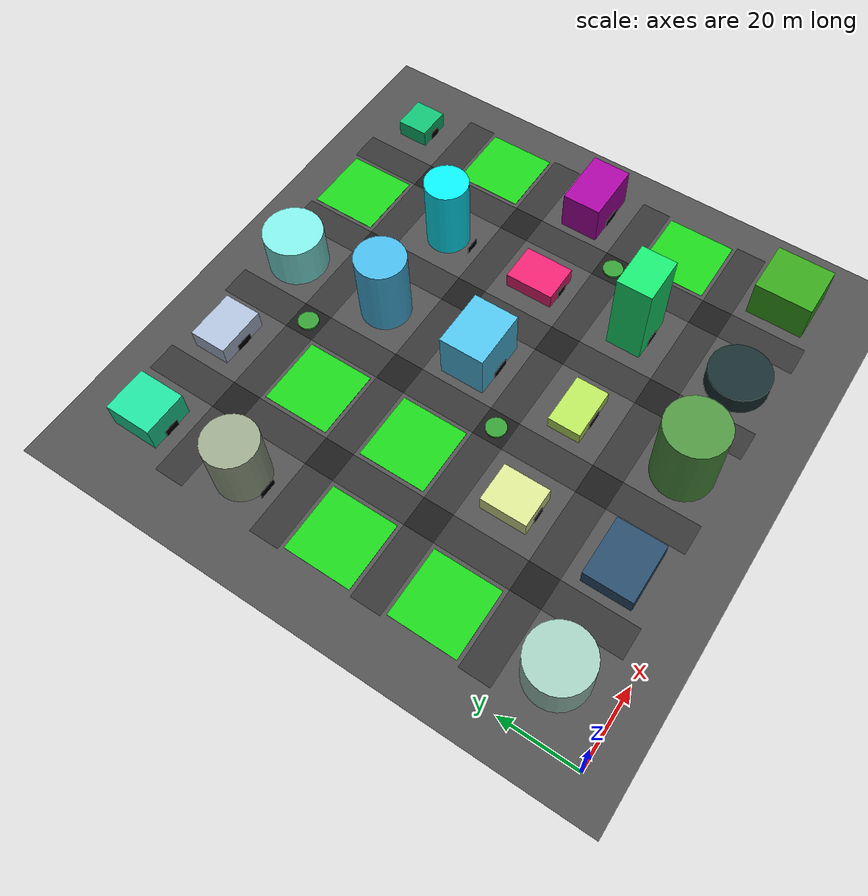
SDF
<sdf version="1.8">
 <world name="urban_city_rich">
  <model name="ground_plane">
   <static>true</static>
   <link name="link">
    <collision name="collision">
     <geometry><plane><normal>0 0 1</normal><size>200 200</size></plane></geometry>
     <surface><friction><ode><mu>100</mu><mu2>50</mu2></ode></friction></surface>
    </collision>
    <visual name="visual">
     <geometry><plane><normal>0 0 1</normal><size>200 200</size></plane></geometry>
     <material><ambient>0.3 0.3 0.3 1</ambient><diffuse>0.3 0.3 0.3 1</diffuse></material>
    </visual>
   </link>
  </model>
  <model name="bldg_28">
   <static>true</static>
   <pose>14.0 14.0 5.685499231946393 0 0 0</pose>
   <link name="link">
    <collision name="col">
     <geometry>
      <cylinder><radius>7.898367655879383</radius><length>11.370998463892786</length></cylinder>
     </geometry>
    </collision>
    <visual name="vis">
     <geometry>
      <cylinder><radius>7.898367655879383</radius><length>11.370998463892786</length></cylinder>
     </geometry>
     <material>
      <ambient>0.6154740010831454 0.7744404887108762 0.7245290238562685 1</ambient>
      <diffuse>0.6154740010831454 0.7744404887108762 0.7245290238562685 1</diffuse>
     </material>
    </visual>
   </link>
  </model>
  <model name="road_h_0_1">
   <static>true</static>
   <pose>14.0 28.0 0.01 0 0 0</pose>
   <link name="link">
    <visual name="vis">
     <geometry><box><size>20.0 8.0 0.02</size></box></geometry>
     <material><ambient>0.2 0.2 0.2 1</ambient><diffuse>0.2 0.2 0.2 1</diffuse></material>
    </visual>
   </link>
  </model>
  <model name="park_0_1">
   <static>true</static>
   <pose>14.0 42.0 0.05 0 0 0</pose>
   <link name="link">
    <visual name="vis">
     <geometry><box><size>18.0 18.0 0.1</size></box></geometry>
     <material><ambient>0.1 0.8 0.1 1</ambient><diffuse>0.1 0.8 0.1 1</diffuse></material>
    </visual>
   </link>
  </model>
  <model name="road_h_0_2">
   <static>true</static>
   <pose>14.0 56.0 0.01 0 0 0</pose>
   <link name="link">
    <visual name="vis">
     <geometry><box><size>20.0 8.0 0.02</size></box></geometry>
     <material><ambient>0.2 0.2 0.2 1</ambient><diffuse>0.2 0.2 0.2 1</diffuse></material>
    </visual>
   </link>
  </model>
  <model name="park_0_2">
   <static>true</static>
   <pose>14.0 70.0 0.05 0 0 0</pose>
   <link name="link">
    <visual name="vis">
     <geometry><box><size>18.0 18.0 0.1</size></box></geometry>
     <material><ambient>0.1 0.8 0.1 1</ambient><diffuse>0.1 0.8 0.1 1</diffuse></material>
    </visual>
   </link>
  </model>
  <model name="road_h_0_3">
   <static>true</static>
   <pose>14.0 84.0 0.01 0 0 0</pose>
   <link name="link">
    <visual name="vis">
     <geometry><box><size>20.0 8.0 0.02</size></box></geometry>
     <material><ambient>0.2 0.2 0.2 1</ambient><diffuse>0.2 0.2 0.2 1</diffuse></material>
    </visual>
   </link>
  </model>
  <model name="bldg_29">
   <static>true</static>
   <pose>14.0 98.0 8.233082452544537 0 0 0</pose>
   <link name="link">
    <collision name="col">
     <geometry><cylinder><radius>6.82322479609805</radius><length>16.466164905089073</length></cylinder></geometry>
    </collision>
    <visual name="vis">
     <geometry><cylinder><radius>6.82322479609805</radius><length>16.466164905089073</length></cylinder></geometry>
     <material>
      <ambient>0.583961199733589 0.6379405639750224 0.5292595040461351 1</ambient>
      <diffuse>0.583961199733589 0.6379405639750224 0.5292595040461351 1</diffuse>
     </material>
    </visual>
   </link>
  </model>
  <model name="door_29">
   <static>true</static>
   <pose>14.0 90.7665104247635 1.0 0 0 0</pose>
   <link name="link">
    <visual name="vis">
     <geometry><box><size>4.548816530732034 0.2 2.0</size></box></geometry>
     <material><ambient>0 0 0 1</ambient><diffuse>0 0 0 1</diffuse></material>
    </visual>
   </link>
  </model>
  <model name="road_h_0_4">
   <static>true</static>
   <pose>14.0 112.0 0.01 0 0 0</pose>
   <link name="link">
    <visual name="vis">
     <geometry><box><size>20.0 8.0 0.02</size></box></geometry>
     <material><ambient>0.2 0.2 0.2 1</ambient><diffuse>0.2 0.2 0.2 1</diffuse></material>
    </visual>
   </link>
  </model>
  <model name="bldg_30">
   <static>true</static>
   <pose>14.0 126.0 3.6754944838925607 0 0 0</pose>
   <link name="link">
    <collision name="col">
     <geometry><box><size>11.807731946299269 12.68857440061371 7.3509889677851215</size></box></geometry>
    </collision>
    <visual name="vis">
     <geometry><box><size>11.807731946299269 12.68857440061371 7.3509889677851215</size></box></geometry>
     <material>
      <ambient>0.11802714076669352 0.8456183309541014 0.6024776619844604 1</ambient>
      <diffuse>0.11802714076669352 0.8456183309541014 0.6024776619844604 1</diffuse>
     </material>
    </visual>
   </link>
  </model>
  <model name="door_30">
   <static>true</static>
   <pose>14.0 119.55571279969315 1.0 0 0 0</pose>
   <link name="link">
    <visual name="vis">
     <geometry><box><size>3.935910648766423 0.2 2.0</size></box></geometry>
     <material><ambient>0 0 0 1</ambient><diffuse>0 0 0 1</diffuse></material>
    </visual>
   </link>
  </model>
  <model name="road_v_1_0">
   <static>true</static>
   <pose>28.0 14.0 0.01 0 0 0</pose>
   <link name="link">
    <visual name="vis">
     <geometry><box><size>8.0 20.0 0.02</size></box></geometry>
     <material><ambient>0.2 0.2 0.2 1</ambient><diffuse>0.2 0.2 0.2 1</diffuse></material>
    </visual>
   </link>
  </model>
  <model name="bldg_35">
   <static>true</static>
   <pose>42.0 14.0 2.3201384446277333 0 0 0</pose>
   <link name="link">
    <collision name="col">
     <geometry><box><size>15.550002278564541 12.712332024917666 4.640276889255467</size></box></geometry>
    </collision>
    <visual name="vis">
     <geometry><box><size>15.550002278564541 12.712332024917666 4.640276889255467</size></box></geometry>
     <material>
      <ambient>0.14931626637363904 0.2856864660443016 0.40122810193149017 1</ambient>
      <diffuse>0.14931626637363904 0.2856864660443016 0.40122810193149017 1</diffuse>
     </material>
    </visual>
   </link>
  </model>
  <model name="road_inter_1_1">
   <static>true</static>
   <pose>28.0 28.0 0.01 0 0 0</pose>
   <link name="link">
    <visual name="vis">
     <geometry><box><size>8.0 8.0 0.02</size></box></geometry>
     <material><ambient>0.1 0.1 0.1 1</ambient><diffuse>0.1 0.1 0.1 1</diffuse></material>
    </visual>
   </link>
  </model>
  <model name="road_h_1_1">
   <static>true</static>
   <pose>42.0 28.0 0.01 0 0 0</pose>
   <link name="link">
    <visual name="vis">
     <geometry><box><size>20.0 8.0 0.02</size></box></geometry>
     <material><ambient>0.2 0.2 0.2 1</ambient><diffuse>0.2 0.2 0.2 1</diffuse></material>
    </visual>
   </link>
  </model>
  <model name="road_v_1_1">
   <static>true</static>
   <pose>28.0 42.0 0.01 0 0 0</pose>
   <link name="link">
    <visual name="vis">
     <geometry><box><size>8.0 20.0 0.02</size></box></geometry>
     <material><ambient>0.2 0.2 0.2 1</ambient><diffuse>0.2 0.2 0.2 1</diffuse></material>
    </visual>
   </link>
  </model>
  <model name="bldg_36">
   <static>true</static>
   <pose>42.0 42.0 2.310948062630259 0 0 0</pose>
   <link name="link">
    <collision name="col">
     <geometry><box><size>10.402809922148496 12.175820120242573 4.621896125260518</size></box></geometry>
    </collision>
    <visual name="vis">
     <geometry><box><size>10.402809922148496 12.175820120242573 4.621896125260518</size></box></geometry>
     <material>
      <ambient>0.8245447802084896 0.8660972322238838 0.5551744397448936 1</ambient>
      <diffuse>0.8245447802084896 0.8660972322238838 0.5551744397448936 1</diffuse>
     </material>
    </visual>
   </link>
  </model>
  <model name="door_36">
   <static>true</static>
   <pose>42.0 35.81208993987871 1.0 0 0 0</pose>
   <link name="link">
    <visual name="vis">
     <geometry><box><size>3.467603307382832 0.2 2.0</size></box></geometry>
     <material><ambient>0 0 0 1</ambient><diffuse>0 0 0 1</diffuse></material>
    </visual>
   </link>
  </model>
  <model name="road_inter_1_2">
   <static>true</static>
   <pose>28.0 56.0 0.01 0 0 0</pose>
   <link name="link">
    <visual name="vis">
     <geometry><box><size>8.0 8.0 0.02</size></box></geometry>
     <material><ambient>0.1 0.1 0.1 1</ambient><diffuse>0.1 0.1 0.1 1</diffuse></material>
    </visual>
   </link>
  </model>
  <model name="road_h_1_2">
   <static>true</static>
   <pose>42.0 56.0 0.01 0 0 0</pose>
   <link name="link">
    <visual name="vis">
     <geometry><box><size>20.0 8.0 0.02</size></box></geometry>
     <material><ambient>0.2 0.2 0.2 1</ambient><diffuse>0.2 0.2 0.2 1</diffuse></material>
    </visual>
   </link>
  </model>
  <model name="road_v_1_2">
   <static>true</static>
   <pose>28.0 70.0 0.01 0 0 0</pose>
   <link name="link">
    <visual name="vis">
     <geometry><box><size>8.0 20.0 0.02</size></box></geometry>
     <material><ambient>0.2 0.2 0.2 1</ambient><diffuse>0.2 0.2 0.2 1</diffuse></material>
    </visual>
   </link>
  </model>
  <model name="park_1_2">
   <static>true</static>
   <pose>42.0 70.0 0.05 0 0 0</pose>
   <link name="link">
    <visual name="vis">
     <geometry><box><size>18.0 18.0 0.1</size></box></geometry>
     <material><ambient>0.1 0.8 0.1 1</ambient><diffuse>0.1 0.8 0.1 1</diffuse></material>
    </visual>
   </link>
  </model>
  <model name="road_inter_1_3">
   <static>true</static>
   <pose>28.0 84.0 0.01 0 0 0</pose>
   <link name="link">
    <visual name="vis">
     <geometry><box><size>8.0 8.0 0.02</size></box></geometry>
     <material><ambient>0.1 0.1 0.1 1</ambient><diffuse>0.1 0.1 0.1 1</diffuse></material>
    </visual>
   </link>
  </model>
  <model name="road_h_1_3">
   <static>true</static>
   <pose>42.0 84.0 0.01 0 0 0</pose>
   <link name="link">
    <visual name="vis">
     <geometry><box><size>20.0 8.0 0.02</size></box></geometry>
     <material><ambient>0.2 0.2 0.2 1</ambient><diffuse>0.2 0.2 0.2 1</diffuse></material>
    </visual>
   </link>
  </model>
  <model name="road_v_1_3">
   <static>true</static>
   <pose>28.0 98.0 0.01 0 0 0</pose>
   <link name="link">
    <visual name="vis">
     <geometry><box><size>8.0 20.0 0.02</size></box></geometry>
     <material><ambient>0.2 0.2 0.2 1</ambient><diffuse>0.2 0.2 0.2 1</diffuse></material>
    </visual>
   </link>
  </model>
  <model name="park_1_3">
   <static>true</static>
   <pose>42.0 98.0 0.05 0 0 0</pose>
   <link name="link">
    <visual name="vis">
     <geometry><box><size>18.0 18.0 0.1</size></box></geometry>
     <material><ambient>0.1 0.8 0.1 1</ambient><diffuse>0.1 0.8 0.1 1</diffuse></material>
    </visual>
   </link>
  </model>
  <model name="road_inter_1_4">
   <static>true</static>
   <pose>28.0 112.0 0.01 0 0 0</pose>
   <link name="link">
    <visual name="vis">
     <geometry><box><size>8.0 8.0 0.02</size></box></geometry>
     <material><ambient>0.1 0.1 0.1 1</ambient><diffuse>0.1 0.1 0.1 1</diffuse></material>
    </visual>
   </link>
  </model>
  <model name="road_h_1_4">
   <static>true</static>
   <pose>42.0 112.0 0.01 0 0 0</pose>
   <link name="link">
    <visual name="vis">
     <geometry><box><size>20.0 8.0 0.02</size></box></geometry>
     <material><ambient>0.2 0.2 0.2 1</ambient><diffuse>0.2 0.2 0.2 1</diffuse></material>
    </visual>
   </link>
  </model>
  <model name="road_v_1_4">
   <static>true</static>
   <pose>28.0 126.0 0.01 0 0 0</pose>
   <link name="link">
    <visual name="vis">
     <geometry><box><size>8.0 20.0 0.02</size></box></geometry>
     <material><ambient>0.2 0.2 0.2 1</ambient><diffuse>0.2 0.2 0.2 1</diffuse></material>
    </visual>
   </link>
  </model>
  <model name="bldg_37">
   <static>true</static>
   <pose>42.0 126.0 2.664848281217337 0 0 0</pose>
   <link name="link">
    <collision name="col">
     <geometry><box><size>13.393127164004394 9.942511189589126 5.329696562434674</size></box></geometry>
    </collision>
    <visual name="vis">
     <geometry><box><size>13.393127164004394 9.942511189589126 5.329696562434674</size></box></geometry>
     <material>
      <ambient>0.663888598311164 0.721105243106654 0.8210436352093743 1</ambient>
      <diffuse>0.663888598311164 0.721105243106654 0.8210436352093743 1</diffuse>
     </material>
    </visual>
   </link>
  </model>
  <model name="door_37">
   <static>true</static>
   <pose>42.0 120.92874440520544 1.0 0 0 0</pose>
   <link name="link">
    <visual name="vis">
     <geometry><box><size>4.464375721334798 0.2 2.0</size></box></geometry>
     <material><ambient>0 0 0 1</ambient><diffuse>0 0 0 1</diffuse></material>
    </visual>
   </link>
  </model>
  <model name="road_v_2_0">
   <static>true</static>
   <pose>56.0 14.0 0.01 0 0 0</pose>
   <link name="link">
    <visual name="vis">
     <geometry><box><size>8.0 20.0 0.02</size></box></geometry>
     <material><ambient>0.2 0.2 0.2 1</ambient><diffuse>0.2 0.2 0.2 1</diffuse></material>
    </visual>
   </link>
  </model>
  <model name="bldg_41">
   <static>true</static>
   <pose>70.0 14.0 10.532635943801678 0 0 0</pose>
   <link name="link">
    <collision name="col">
     <geometry>
      <cylinder><radius>7.837646758557028</radius><length>21.065271887603355</length></cylinder>
     </geometry>
    </collision>
    <visual name="vis">
     <geometry>
      <cylinder><radius>7.837646758557028</radius><length>21.065271887603355</length></cylinder>
     </geometry>
     <material>
      <ambient>0.29941993303598424 0.562408701392852 0.2496993738528701 1</ambient>
      <diffuse>0.29941993303598424 0.562408701392852 0.2496993738528701 1</diffuse>
     </material>
    </visual>
   </link>
  </model>
  <model name="door_41">
   <static>true</static>
   <pose>70.0 8.818568813748506 1.0 0 0 0</pose>
   <link name="link">
    <visual name="vis">
     <geometry><box><size>5.2250978390380185 0.2 2.0</size></box></geometry>
     <material><ambient>0 0 0 1</ambient><diffuse>0 0 0 1</diffuse></material>
    </visual>
   </link>
  </model>
  <model name="road_inter_2_1">
   <static>true</static>
   <pose>56.0 28.0 0.01 0 0 0</pose>
   <link name="link">
    <visual name="vis">
     <geometry><box><size>8.0 8.0 0.02</size></box></geometry>
     <material><ambient>0.1 0.1 0.1 1</ambient><diffuse>0.1 0.1 0.1 1</diffuse></material>
    </visual>
   </link>
  </model>
  <model name="road_h_2_1">
   <static>true</static>
   <pose>70.0 28.0 0.01 0 0 0</pose>
   <link name="link">
    <visual name="vis">
     <geometry><box><size>20.0 8.0 0.02</size></box></geometry>
     <material><ambient>0.2 0.2 0.2 1</ambient><diffuse>0.2 0.2 0.2 1</diffuse></material>
    </visual>
   </link>
  </model>
  <model name="road_v_2_1">
   <static>true</static>
   <pose>56.0 42.0 0.01 0 0 0</pose>
   <link name="link">
    <visual name="vis">
     <geometry><box><size>8.0 20.0 0.02</size></box></geometry>
     <material><ambient>0.2 0.2 0.2 1</ambient><diffuse>0.2 0.2 0.2 1</diffuse></material>
    </visual>
   </link>
  </model>
  <model name="bldg_42">
   <static>true</static>
   <pose>70.0 42.0 1.770200113498316 0 0 0</pose>
   <link name="link">
    <collision name="col">
     <geometry><box><size>13.552681564584802 8.598847044795242 3.540400226996632</size></box></geometry>
    </collision>
    <visual name="vis">
     <geometry><box><size>13.552681564584802 8.598847044795242 3.540400226996632</size></box></geometry>
     <material>
      <ambient>0.6999712206346148 0.8655176366864179 0.34971847463449224 1</ambient>
      <diffuse>0.6999712206346148 0.8655176366864179 0.34971847463449224 1</diffuse>
     </material>
    </visual>
   </link>
  </model>
  <model name="door_42">
   <static>true</static>
   <pose>70.0 37.60057647760238 1.0 0 0 0</pose>
   <link name="link">
    <visual name="vis">
     <geometry><box><size>4.517560521528267 0.2 2.0</size></box></geometry>
     <material><ambient>0 0 0 1</ambient><diffuse>0 0 0 1</diffuse></material>
    </visual>
   </link>
  </model>
  <model name="road_inter_2_2">
   <static>true</static>
   <pose>56.0 56.0 0.01 0 0 0</pose>
   <link name="link">
    <visual name="vis">
     <geometry><box><size>8.0 8.0 0.02</size></box></geometry>
     <material><ambient>0.1 0.1 0.1 1</ambient><diffuse>0.1 0.1 0.1 1</diffuse></material>
    </visual>
   </link>
  </model>
  <model name="roundabout_2_2">
   <static>true</static>
   <pose>56.0 56.0 0.3 0 0 0</pose>
   <link name="link">
    <collision name="col">
     <geometry><cylinder><radius>2.6666666666666665</radius><length>0.6</length></cylinder></geometry>
    </collision>
    <visual name="vis">
     <geometry><cylinder><radius>2.6666666666666665</radius><length>0.6</length></cylinder></geometry>
     <material><ambient>0.2 0.6 0.2 1</ambient><diffuse>0.2 0.6 0.2 1</diffuse></material>
    </visual>
   </link>
  </model>
  <model name="road_h_2_2">
   <static>true</static>
   <pose>70.0 56.0 0.01 0 0 0</pose>
   <link name="link">
    <visual name="vis">
     <geometry><box><size>20.0 8.0 0.02</size></box></geometry>
     <material><ambient>0.2 0.2 0.2 1</ambient><diffuse>0.2 0.2 0.2 1</diffuse></material>
    </visual>
   </link>
  </model>
  <model name="road_v_2_2">
   <static>true</static>
   <pose>56.0 70.0 0.01 0 0 0</pose>
   <link name="link">
    <visual name="vis">
     <geometry><box><size>8.0 20.0 0.02</size></box></geometry>
     <material><ambient>0.2 0.2 0.2 1</ambient><diffuse>0.2 0.2 0.2 1</diffuse></material>
    </visual>
   </link>
  </model>
  <model name="bldg_43">
   <static>true</static>
   <pose>70.0 70.0 6.703978183150754 0 0 0</pose>
   <link name="link">
    <collision name="col">
     <geometry><box><size>15.415653457049263 12.055922982112625 13.407956366301509</size></box></geometry>
    </collision>
    <visual name="vis">
     <geometry><box><size>15.415653457049263 12.055922982112625 13.407956366301509</size></box></geometry>
     <material>
      <ambient>0.3062558256378711 0.7363833144302501 0.8857700893970769 1</ambient>
      <diffuse>0.3062558256378711 0.7363833144302501 0.8857700893970769 1</diffuse>
     </material>
    </visual>
   </link>
  </model>
  <model name="door_43">
   <static>true</static>
   <pose>70.0 63.87203850894369 1.0 0 0 0</pose>
   <link name="link">
    <visual name="vis">
     <geometry><box><size>5.138551152349755 0.2 2.0</size></box></geometry>
     <material><ambient>0 0 0 1</ambient><diffuse>0 0 0 1</diffuse></material>
    </visual>
   </link>
  </model>
  <model name="road_inter_2_3">
   <static>true</static>
   <pose>56.0 84.0 0.01 0 0 0</pose>
   <link name="link">
    <visual name="vis">
     <geometry><box><size>8.0 8.0 0.02</size></box></geometry>
     <material><ambient>0.1 0.1 0.1 1</ambient><diffuse>0.1 0.1 0.1 1</diffuse></material>
    </visual>
   </link>
  </model>
  <model name="road_h_2_3">
   <static>true</static>
   <pose>70.0 84.0 0.01 0 0 0</pose>
   <link name="link">
    <visual name="vis">
     <geometry><box><size>20.0 8.0 0.02</size></box></geometry>
     <material><ambient>0.2 0.2 0.2 1</ambient><diffuse>0.2 0.2 0.2 1</diffuse></material>
    </visual>
   </link>
  </model>
  <model name="road_v_2_3">
   <static>true</static>
   <pose>56.0 98.0 0.01 0 0 0</pose>
   <link name="link">
    <visual name="vis">
     <geometry><box><size>8.0 20.0 0.02</size></box></geometry>
     <material><ambient>0.2 0.2 0.2 1</ambient><diffuse>0.2 0.2 0.2 1</diffuse></material>
    </visual>
   </link>
  </model>
  <model name="bldg_44">
   <static>true</static>
   <pose>70.0 98.0 10.373371232007843 0 0 0</pose>
   <link name="link">
    <collision name="col">
     <geometry>
      <cylinder><radius>6.530054644071363</radius><length>20.746742464015686</length></cylinder>
     </geometry>
    </collision>
    <visual name="vis">
     <geometry>
      <cylinder><radius>6.530054644071363</radius><length>20.746742464015686</length></cylinder>
     </geometry>
     <material>
      <ambient>0.2697642536592266 0.7035958267057905 0.8789883001597315 1</ambient>
      <diffuse>0.2697642536592266 0.7035958267057905 0.8789883001597315 1</diffuse>
     </material>
    </visual>
   </link>
  </model>
  <model name="door_44">
   <static>true</static>
   <pose>70.0 92.13410493117442 1.0 0 0 0</pose>
   <link name="link">
    <visual name="vis">
     <geometry><box><size>4.353369762714242 0.2 2.0</size></box></geometry>
     <material><ambient>0 0 0 1</ambient><diffuse>0 0 0 1</diffuse></material>
    </visual>
   </link>
  </model>
  <model name="road_inter_2_4">
   <static>true</static>
   <pose>56.0 112.0 0.01 0 0 0</pose>
   <link name="link">
    <visual name="vis">
     <geometry><box><size>8.0 8.0 0.02</size></box></geometry>
     <material><ambient>0.1 0.1 0.1 1</ambient><diffuse>0.1 0.1 0.1 1</diffuse></material>
    </visual>
   </link>
  </model>
  <model name="roundabout_2_4">
   <static>true</static>
   <pose>56.0 112.0 0.3 0 0 0</pose>
   <link name="link">
    <collision name="col">
     <geometry><cylinder><radius>2.6666666666666665</radius><length>0.6</length></cylinder></geometry>
    </collision>
    <visual name="vis">
     <geometry><cylinder><radius>2.6666666666666665</radius><length>0.6</length></cylinder></geometry>
     <material><ambient>0.2 0.6 0.2 1</ambient><diffuse>0.2 0.6 0.2 1</diffuse></material>
    </visual>
   </link>
  </model>
  <model name="road_h_2_4">
   <static>true</static>
   <pose>70.0 112.0 0.01 0 0 0</pose>
   <link name="link">
    <visual name="vis">
     <geometry><box><size>20.0 8.0 0.02</size></box></geometry>
     <material><ambient>0.2 0.2 0.2 1</ambient><diffuse>0.2 0.2 0.2 1</diffuse></material>
    </visual>
   </link>
  </model>
  <model name="road_v_2_4">
   <static>true</static>
   <pose>56.0 126.0 0.01 0 0 0</pose>
   <link name="link">
    <visual name="vis">
     <geometry><box><size>8.0 20.0 0.02</size></box></geometry>
     <material><ambient>0.2 0.2 0.2 1</ambient><diffuse>0.2 0.2 0.2 1</diffuse></material>
    </visual>
   </link>
  </model>
  <model name="bldg_45">
   <static>true</static>
   <pose>70.0 126.0 5.945886198092774 0 0 0</pose>
   <link name="link">
    <collision name="col">
     <geometry>
      <cylinder><radius>7.801518760929053</radius><length>11.891772396185548</length></cylinder>
     </geometry>
    </collision>
    <visual name="vis">
     <geometry>
      <cylinder><radius>7.801518760929053</radius><length>11.891772396185548</length></cylinder>
     </geometry>
     <material>
      <ambient>0.4862680477424969 0.8900909542708757 0.8656160437973315 1</ambient>
      <diffuse>0.4862680477424969 0.8900909542708757 0.8656160437973315 1</diffuse>
     </material>
    </visual>
   </link>
  </model>
  <model name="door_45">
   <static>true</static>
   <pose>70.0 121.798988188749 1.0 0 0 0</pose>
   <link name="link">
    <visual name="vis">
     <geometry><box><size>5.201012507286035 0.2 2.0</size></box></geometry>
     <material><ambient>0 0 0 1</ambient><diffuse>0 0 0 1</diffuse></material>
    </visual>
   </link>
  </model>
  <model name="road_v_3_0">
   <static>true</static>
   <pose>84.0 14.0 0.01 0 0 0</pose>
   <link name="link">
    <visual name="vis">
     <geometry><box><size>8.0 20.0 0.02</size></box></geometry>
     <material><ambient>0.2 0.2 0.2 1</ambient><diffuse>0.2 0.2 0.2 1</diffuse></material>
    </visual>
   </link>
  </model>
  <model name="bldg_49">
   <static>true</static>
   <pose>98.0 14.0 2.6930699487190655 0 0 0</pose>
   <link name="link">
    <collision name="col">
     <geometry><cylinder><radius>7.987913469225816</radius><length>5.386139897438131</length></cylinder></geometry>
    </collision>
    <visual name="vis">
     <geometry><cylinder><radius>7.987913469225816</radius><length>5.386139897438131</length></cylinder></geometry>
     <material>
      <ambient>0.08983854154211479 0.17435316990022853 0.17995896050059756 1</ambient>
      <diffuse>0.08983854154211479 0.17435316990022853 0.17995896050059756 1</diffuse>
     </material>
    </visual>
   </link>
  </model>
  <model name="door_49">
   <static>true</static>
   <pose>98.0 8.133208421600303 1.0 0 0 0</pose>
   <link name="link">
    <visual name="vis">
     <geometry><box><size>5.325275646150544 0.2 2.0</size></box></geometry>
     <material><ambient>0 0 0 1</ambient><diffuse>0 0 0 1</diffuse></material>
    </visual>
   </link>
  </model>
  <model name="road_inter_3_1">
   <static>true</static>
   <pose>84.0 28.0 0.01 0 0 0</pose>
   <link name="link">
    <visual name="vis">
     <geometry><box><size>8.0 8.0 0.02</size></box></geometry>
     <material><ambient>0.1 0.1 0.1 1</ambient><diffuse>0.1 0.1 0.1 1</diffuse></material>
    </visual>
   </link>
  </model>
  <model name="road_h_3_1">
   <static>true</static>
   <pose>98.0 28.0 0.01 0 0 0</pose>
   <link name="link">
    <visual name="vis">
     <geometry><box><size>20.0 8.0 0.02</size></box></geometry>
     <material><ambient>0.2 0.2 0.2 1</ambient><diffuse>0.2 0.2 0.2 1</diffuse></material>
    </visual>
   </link>
  </model>
  <model name="road_v_3_1">
   <static>true</static>
   <pose>84.0 42.0 0.01 0 0 0</pose>
   <link name="link">
    <visual name="vis">
     <geometry><box><size>8.0 20.0 0.02</size></box></geometry>
     <material><ambient>0.2 0.2 0.2 1</ambient><diffuse>0.2 0.2 0.2 1</diffuse></material>
    </visual>
   </link>
  </model>
  <model name="bldg_50">
   <static>true</static>
   <pose>98.0 42.0 12.217812953869252 0 0 0</pose>
   <link name="link">
    <collision name="col">
     <geometry><box><size>12.363990219283151 9.253213885697225 24.435625907738505</size></box></geometry>
    </collision>
    <visual name="vis">
     <geometry><box><size>12.363990219283151 9.253213885697225 24.435625907738505</size></box></geometry>
     <material>
      <ambient>0.08996337602737992 0.871891380008465 0.4231008470675309 1</ambient>
      <diffuse>0.08996337602737992 0.871891380008465 0.4231008470675309 1</diffuse>
     </material>
    </visual>
   </link>
  </model>
  <model name="door_50">
   <static>true</static>
   <pose>98.0 37.27339305715139 1.0 0 0 0</pose>
   <link name="link">
    <visual name="vis">
     <geometry><box><size>4.121330073094383 0.2 2.0</size></box></geometry>
     <material><ambient>0 0 0 1</ambient><diffuse>0 0 0 1</diffuse></material>
    </visual>
   </link>
  </model>
  <model name="road_inter_3_2">
   <static>true</static>
   <pose>84.0 56.0 0.01 0 0 0</pose>
   <link name="link">
    <visual name="vis">
     <geometry><box><size>8.0 8.0 0.02</size></box></geometry>
     <material><ambient>0.1 0.1 0.1 1</ambient><diffuse>0.1 0.1 0.1 1</diffuse></material>
    </visual>
   </link>
  </model>
  <model name="road_h_3_2">
   <static>true</static>
   <pose>98.0 56.0 0.01 0 0 0</pose>
   <link name="link">
    <visual name="vis">
     <geometry><box><size>20.0 8.0 0.02</size></box></geometry>
     <material><ambient>0.2 0.2 0.2 1</ambient><diffuse>0.2 0.2 0.2 1</diffuse></material>
    </visual>
   </link>
  </model>
  <model name="road_v_3_2">
   <static>true</static>
   <pose>84.0 70.0 0.01 0 0 0</pose>
   <link name="link">
    <visual name="vis">
     <geometry><box><size>8.0 20.0 0.02</size></box></geometry>
     <material><ambient>0.2 0.2 0.2 1</ambient><diffuse>0.2 0.2 0.2 1</diffuse></material>
    </visual>
   </link>
  </model>
  <model name="bldg_51">
   <static>true</static>
   <pose>98.0 70.0 2.1167106733620726 0 0 0</pose>
   <link name="link">
    <collision name="col">
     <geometry><box><size>10.286544711233306 13.026295480409665 4.233421346724145</size></box></geometry>
    </collision>
    <visual name="vis">
     <geometry><box><size>10.286544711233306 13.026295480409665 4.233421346724145</size></box></geometry>
     <material>
      <ambient>0.8935981440515482 0.1250005623303453 0.42833029114481225 1</ambient>
      <diffuse>0.8935981440515482 0.1250005623303453 0.42833029114481225 1</diffuse>
     </material>
    </visual>
   </link>
  </model>
  <model name="door_51">
   <static>true</static>
   <pose>98.0 63.38685225979517 1.0 0 0 0</pose>
   <link name="link">
    <visual name="vis">
     <geometry><box><size>3.428848237077769 0.2 2.0</size></box></geometry>
     <material><ambient>0 0 0 1</ambient><diffuse>0 0 0 1</diffuse></material>
    </visual>
   </link>
  </model>
  <model name="road_inter_3_3">
   <static>true</static>
   <pose>84.0 84.0 0.01 0 0 0</pose>
   <link name="link">
    <visual name="vis">
     <geometry><box><size>8.0 8.0 0.02</size></box></geometry>
     <material><ambient>0.1 0.1 0.1 1</ambient><diffuse>0.1 0.1 0.1 1</diffuse></material>
    </visual>
   </link>
  </model>
  <model name="road_h_3_3">
   <static>true</static>
   <pose>98.0 84.0 0.01 0 0 0</pose>
   <link name="link">
    <visual name="vis">
     <geometry><box><size>20.0 8.0 0.02</size></box></geometry>
     <material><ambient>0.2 0.2 0.2 1</ambient><diffuse>0.2 0.2 0.2 1</diffuse></material>
    </visual>
   </link>
  </model>
  <model name="road_v_3_3">
   <static>true</static>
   <pose>84.0 98.0 0.01 0 0 0</pose>
   <link name="link">
    <visual name="vis">
     <geometry><box><size>8.0 20.0 0.02</size></box></geometry>
     <material><ambient>0.2 0.2 0.2 1</ambient><diffuse>0.2 0.2 0.2 1</diffuse></material>
    </visual>
   </link>
  </model>
  <model name="bldg_52">
   <static>true</static>
   <pose>98.0 98.0 10.439216257576494 0 0 0</pose>
   <link name="link">
    <collision name="col">
     <geometry>
      <cylinder><radius>5.738015578121445</radius><length>20.878432515152987</length></cylinder>
     </geometry>
    </collision>
    <visual name="vis">
     <geometry>
      <cylinder><radius>5.738015578121445</radius><length>20.878432515152987</length></cylinder>
     </geometry>
     <material>
      <ambient>0.034709052483059555 0.9033552916400889 0.9728137958600499 1</ambient>
      <diffuse>0.034709052483059555 0.9033552916400889 0.9728137958600499 1</diffuse>
     </material>
    </visual>
   </link>
  </model>
  <model name="door_52">
   <static>true</static>
   <pose>98.0 90.47349273975608 1.0 0 0 0</pose>
   <link name="link">
    <visual name="vis">
     <geometry><box><size>3.82534371874763 0.2 2.0</size></box></geometry>
     <material><ambient>0 0 0 1</ambient><diffuse>0 0 0 1</diffuse></material>
    </visual>
   </link>
  </model>
  <model name="road_inter_3_4">
   <static>true</static>
   <pose>84.0 112.0 0.01 0 0 0</pose>
   <link name="link">
    <visual name="vis">
     <geometry><box><size>8.0 8.0 0.02</size></box></geometry>
     <material><ambient>0.1 0.1 0.1 1</ambient><diffuse>0.1 0.1 0.1 1</diffuse></material>
    </visual>
   </link>
  </model>
  <model name="road_h_3_4">
   <static>true</static>
   <pose>98.0 112.0 0.01 0 0 0</pose>
   <link name="link">
    <visual name="vis">
     <geometry><box><size>20.0 8.0 0.02</size></box></geometry>
     <material><ambient>0.2 0.2 0.2 1</ambient><diffuse>0.2 0.2 0.2 1</diffuse></material>
    </visual>
   </link>
  </model>
  <model name="road_v_3_4">
   <static>true</static>
   <pose>84.0 126.0 0.01 0 0 0</pose>
   <link name="link">
    <visual name="vis">
     <geometry><box><size>8.0 20.0 0.02</size></box></geometry>
     <material><ambient>0.2 0.2 0.2 1</ambient><diffuse>0.2 0.2 0.2 1</diffuse></material>
    </visual>
   </link>
  </model>
  <model name="park_3_4">
   <static>true</static>
   <pose>98.0 126.0 0.05 0 0 0</pose>
   <link name="link">
    <visual name="vis">
     <geometry><box><size>18.0 18.0 0.1</size></box></geometry>
     <material><ambient>0.1 0.8 0.1 1</ambient><diffuse>0.1 0.8 0.1 1</diffuse></material>
    </visual>
   </link>
  </model>
  <model name="road_v_4_0">
   <static>true</static>
   <pose>112.0 14.0 0.01 0 0 0</pose>
   <link name="link">
    <visual name="vis">
     <geometry><box><size>8.0 20.0 0.02</size></box></geometry>
     <material><ambient>0.2 0.2 0.2 1</ambient><diffuse>0.2 0.2 0.2 1</diffuse></material>
    </visual>
   </link>
  </model>
  <model name="bldg_56">
   <static>true</static>
   <pose>126.0 14.0 5.481460461249301 0 0 0</pose>
   <link name="link">
    <collision name="col">
     <geometry><box><size>13.959698036527644 14.97419453416859 10.962920922498602</size></box></geometry>
    </collision>
    <visual name="vis">
     <geometry><box><size>13.959698036527644 14.97419453416859 10.962920922498602</size></box></geometry>
     <material>
      <ambient>0.20944841632348676 0.6286101714371993 0.10193807524128451 1</ambient>
      <diffuse>0.20944841632348676 0.6286101714371993 0.10193807524128451 1</diffuse>
     </material>
    </visual>
   </link>
  </model>
  <model name="road_inter_4_1">
   <static>true</static>
   <pose>112.0 28.0 0.01 0 0 0</pose>
   <link name="link">
    <visual name="vis">
     <geometry><box><size>8.0 8.0 0.02</size></box></geometry>
     <material><ambient>0.1 0.1 0.1 1</ambient><diffuse>0.1 0.1 0.1 1</diffuse></material>
    </visual>
   </link>
  </model>
  <model name="road_h_4_1">
   <static>true</static>
   <pose>126.0 28.0 0.01 0 0 0</pose>
   <link name="link">
    <visual name="vis">
     <geometry><box><size>20.0 8.0 0.02</size></box></geometry>
     <material><ambient>0.2 0.2 0.2 1</ambient><diffuse>0.2 0.2 0.2 1</diffuse></material>
    </visual>
   </link>
  </model>
  <model name="road_v_4_1">
   <static>true</static>
   <pose>112.0 42.0 0.01 0 0 0</pose>
   <link name="link">
    <visual name="vis">
     <geometry><box><size>8.0 20.0 0.02</size></box></geometry>
     <material><ambient>0.2 0.2 0.2 1</ambient><diffuse>0.2 0.2 0.2 1</diffuse></material>
    </visual>
   </link>
  </model>
  <model name="park_4_1">
   <static>true</static>
   <pose>126.0 42.0 0.05 0 0 0</pose>
   <link name="link">
    <visual name="vis">
     <geometry><box><size>18.0 18.0 0.1</size></box></geometry>
     <material><ambient>0.1 0.8 0.1 1</ambient><diffuse>0.1 0.8 0.1 1</diffuse></material>
    </visual>
   </link>
  </model>
  <model name="road_inter_4_2">
   <static>true</static>
   <pose>112.0 56.0 0.01 0 0 0</pose>
   <link name="link">
    <visual name="vis">
     <geometry><box><size>8.0 8.0 0.02</size></box></geometry>
     <material><ambient>0.1 0.1 0.1 1</ambient><diffuse>0.1 0.1 0.1 1</diffuse></material>
    </visual>
   </link>
  </model>
  <model name="roundabout_4_2">
   <static>true</static>
   <pose>112.0 56.0 0.3 0 0 0</pose>
   <link name="link">
    <collision name="col">
     <geometry><cylinder><radius>2.6666666666666665</radius><length>0.6</length></cylinder></geometry>
    </collision>
    <visual name="vis">
     <geometry><cylinder><radius>2.6666666666666665</radius><length>0.6</length></cylinder></geometry>
     <material><ambient>0.2 0.6 0.2 1</ambient><diffuse>0.2 0.6 0.2 1</diffuse></material>
    </visual>
   </link>
  </model>
  <model name="road_h_4_2">
   <static>true</static>
   <pose>126.0 56.0 0.01 0 0 0</pose>
   <link name="link">
    <visual name="vis">
     <geometry><box><size>20.0 8.0 0.02</size></box></geometry>
     <material><ambient>0.2 0.2 0.2 1</ambient><diffuse>0.2 0.2 0.2 1</diffuse></material>
    </visual>
   </link>
  </model>
  <model name="road_v_4_2">
   <static>true</static>
   <pose>112.0 70.0 0.01 0 0 0</pose>
   <link name="link">
    <visual name="vis">
     <geometry><box><size>8.0 20.0 0.02</size></box></geometry>
     <material><ambient>0.2 0.2 0.2 1</ambient><diffuse>0.2 0.2 0.2 1</diffuse></material>
    </visual>
   </link>
  </model>
  <model name="bldg_57">
   <static>true</static>
   <pose>126.0 70.0 5.512521766293892 0 0 0</pose>
   <link name="link">
    <collision name="col">
     <geometry><box><size>15.973943212373396 10.369330754219579 11.025043532587784</size></box></geometry>
    </collision>
    <visual name="vis">
     <geometry><box><size>15.973943212373396 10.369330754219579 11.025043532587784</size></box></geometry>
     <material>
      <ambient>0.6464061973416908 0.015232507409610574 0.617861640652459 1</ambient>
      <diffuse>0.6464061973416908 0.015232507409610574 0.617861640652459 1</diffuse>
     </material>
    </visual>
   </link>
  </model>
  <model name="door_57">
   <static>true</static>
   <pose>126.0 64.71533462289021 1.0 0 0 0</pose>
   <link name="link">
    <visual name="vis">
     <geometry><box><size>5.3246477374577985 0.2 2.0</size></box></geometry>
     <material><ambient>0 0 0 1</ambient><diffuse>0 0 0 1</diffuse></material>
    </visual>
   </link>
  </model>
  <model name="road_inter_4_3">
   <static>true</static>
   <pose>112.0 84.0 0.01 0 0 0</pose>
   <link name="link">
    <visual name="vis">
     <geometry><box><size>8.0 8.0 0.02</size></box></geometry>
     <material><ambient>0.1 0.1 0.1 1</ambient><diffuse>0.1 0.1 0.1 1</diffuse></material>
    </visual>
   </link>
  </model>
  <model name="road_h_4_3">
   <static>true</static>
   <pose>126.0 84.0 0.01 0 0 0</pose>
   <link name="link">
    <visual name="vis">
     <geometry><box><size>20.0 8.0 0.02</size></box></geometry>
     <material><ambient>0.2 0.2 0.2 1</ambient><diffuse>0.2 0.2 0.2 1</diffuse></material>
    </visual>
   </link>
  </model>
  <model name="road_v_4_3">
   <static>true</static>
   <pose>112.0 98.0 0.01 0 0 0</pose>
   <link name="link">
    <visual name="vis">
     <geometry><box><size>8.0 20.0 0.02</size></box></geometry>
     <material><ambient>0.2 0.2 0.2 1</ambient><diffuse>0.2 0.2 0.2 1</diffuse></material>
    </visual>
   </link>
  </model>
  <model name="park_4_3">
   <static>true</static>
   <pose>126.0 98.0 0.05 0 0 0</pose>
   <link name="link">
    <visual name="vis">
     <geometry><box><size>18.0 18.0 0.1</size></box></geometry>
     <material><ambient>0.1 0.8 0.1 1</ambient><diffuse>0.1 0.8 0.1 1</diffuse></material>
    </visual>
   </link>
  </model>
  <model name="road_inter_4_4">
   <static>true</static>
   <pose>112.0 112.0 0.01 0 0 0</pose>
   <link name="link">
    <visual name="vis">
     <geometry><box><size>8.0 8.0 0.02</size></box></geometry>
     <material><ambient>0.1 0.1 0.1 1</ambient><diffuse>0.1 0.1 0.1 1</diffuse></material>
    </visual>
   </link>
  </model>
  <model name="roundabout_4_4">
   <static>true</static>
   <pose>112.0 112.0 0.3 0 0 0</pose>
   <link name="link">
    <collision name="col">
     <geometry><cylinder><radius>2.6666666666666665</radius><length>0.6</length></cylinder></geometry>
    </collision>
    <visual name="vis">
     <geometry><cylinder><radius>2.6666666666666665</radius><length>0.6</length></cylinder></geometry>
     <material><ambient>0.2 0.6 0.2 1</ambient><diffuse>0.2 0.6 0.2 1</diffuse></material>
    </visual>
   </link>
  </model>
  <model name="road_h_4_4">
   <static>true</static>
   <pose>126.0 112.0 0.01 0 0 0</pose>
   <link name="link">
    <visual name="vis">
     <geometry><box><size>20.0 8.0 0.02</size></box></geometry>
     <material><ambient>0.2 0.2 0.2 1</ambient><diffuse>0.2 0.2 0.2 1</diffuse></material>
    </visual>
   </link>
  </model>
  <model name="road_v_4_4">
   <static>true</static>
   <pose>112.0 126.0 0.01 0 0 0</pose>
   <link name="link">
    <visual name="vis">
     <geometry><box><size>8.0 20.0 0.02</size></box></geometry>
     <material><ambient>0.2 0.2 0.2 1</ambient><diffuse>0.2 0.2 0.2 1</diffuse></material>
    </visual>
   </link>
  </model>
  <model name="bldg_58">
   <static>true</static>
   <pose>126.0 126.0 2.3281479118826978 0 0 0</pose>
   <link name="link">
    <collision name="col">
     <geometry><box><size>9.149989189708567 8.434160235586065 4.6562958237653955</size></box></geometry>
    </collision>
    <visual name="vis">
     <geometry><box><size>9.149989189708567 8.434160235586065 4.6562958237653955</size></box></geometry>
     <material>
      <ambient>0.0592736724559455 0.7236079870071604 0.43823183582606806 1</ambient>
      <diffuse>0.0592736724559455 0.7236079870071604 0.43823183582606806 1</diffuse>
     </material>
    </visual>
   </link>
  </model>
  <model name="door_58">
   <static>true</static>
   <pose>126.0 121.68291988220697 1.0 0 0 0</pose>
   <link name="link">
    <visual name="vis">
     <geometry><box><size>3.0499963965695223 0.2 2.0</size></box></geometry>
     <material><ambient>0 0 0 1</ambient><diffuse>0 0 0 1</diffuse></material>
    </visual>
   </link>
  </model>
 </world>
</sdf>
